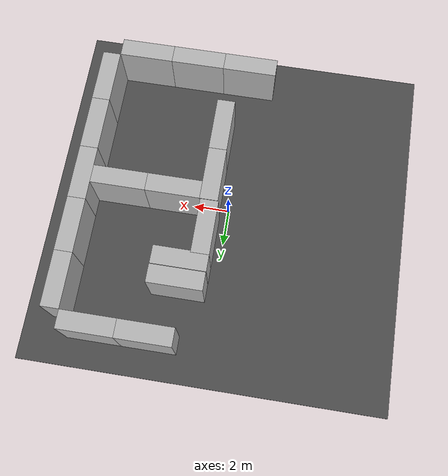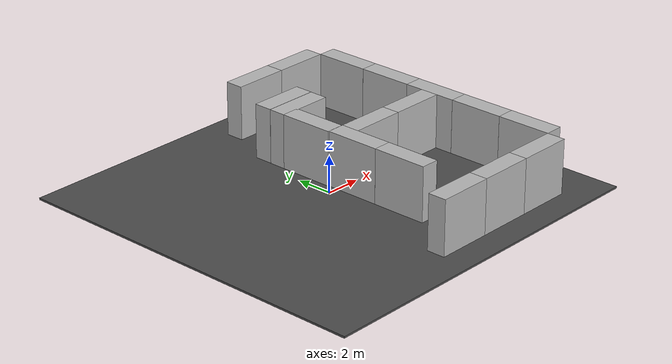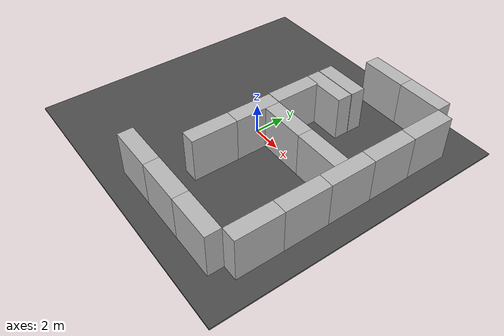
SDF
<sdf version="1.7">
 <world name="default">
  <model name="asphalt_plane">
   <static>1</static>
   <link name="link">
    <collision name="collision"><geometry><box><size>20 20 0.1</size></box></geometry></collision>
    <visual name="visual">
     <cast_shadows>0</cast_shadows>
     <geometry><box><size>20 20 0.1</size></box></geometry>
     <material>
      <script>
       <uri>model://asphalt_plane/materials/scripts</uri>
       <uri>model://asphalt_plane/materials/textures</uri>
       <name>vrc/asphalt</name>
      </script>
     </material>
    </visual>
    <velocity_decay><linear>0</linear><angular>0</angular></velocity_decay>
   </link>
  </model>
  <model name="brick_box_3x1x3_0">
   <static>1</static>
   <link name="chassis">
    <pose>0 0 1.5 0 -0 0</pose>
    <collision name="collision"><geometry><box><size>3 1 3</size></box></geometry></collision>
    <visual name="visual">
     <geometry><mesh><uri>model://brick_box_3x1x3/meshes/simple_box.dae</uri><scale>3 1 3</scale></mesh></geometry>
     <material>
      <script>
       <uri>model://brick_box_3x1x3/materials/scripts</uri>
       <uri>model://brick_box_3x1x3/materials/textures</uri>
       <name>BrickBox/Diffuse</name>
      </script>
     </material>
    </visual>
    <velocity_decay><linear>0</linear><angular>0</angular></velocity_decay>
   </link>
   <pose>3 8 0 0 -0 0</pose>
  </model>
  <model name="brick_box_3x1x3_1">
   <static>1</static>
   <link name="chassis">
    <pose>0 0 1.5 0 -0 0</pose>
    <collision name="collision"><geometry><box><size>3 1 3</size></box></geometry></collision>
    <visual name="visual">
     <geometry><mesh><uri>model://brick_box_3x1x3/meshes/simple_box.dae</uri><scale>3 1 3</scale></mesh></geometry>
     <material>
      <script>
       <uri>model://brick_box_3x1x3/materials/scripts</uri>
       <uri>model://brick_box_3x1x3/materials/textures</uri>
       <name>BrickBox/Diffuse</name>
      </script>
     </material>
    </visual>
    <velocity_decay><linear>0</linear><angular>0</angular></velocity_decay>
   </link>
   <pose>6 8 0 0 -0 0</pose>
  </model>
  <model name="brick_box_3x1x3_4">
   <static>1</static>
   <link name="chassis">
    <pose>0 0 1.5 0 -0 0</pose>
    <collision name="collision"><geometry><box><size>3 1 3</size></box></geometry></collision>
    <visual name="visual">
     <geometry><mesh><uri>model://brick_box_3x1x3/meshes/simple_box.dae</uri><scale>3 1 3</scale></mesh></geometry>
     <material>
      <script>
       <uri>model://brick_box_3x1x3/materials/scripts</uri>
       <uri>model://brick_box_3x1x3/materials/textures</uri>
       <name>BrickBox/Diffuse</name>
      </script>
     </material>
    </visual>
    <velocity_decay><linear>0</linear><angular>0</angular></velocity_decay>
   </link>
   <pose>6 -8 0 0 -0 0</pose>
  </model>
  <model name="brick_box_3x1x3_5">
   <static>1</static>
   <link name="chassis">
    <pose>0 0 1.5 0 -0 0</pose>
    <collision name="collision"><geometry><box><size>3 1 3</size></box></geometry></collision>
    <visual name="visual">
     <geometry><mesh><uri>model://brick_box_3x1x3/meshes/simple_box.dae</uri><scale>3 1 3</scale></mesh></geometry>
     <material>
      <script>
       <uri>model://brick_box_3x1x3/materials/scripts</uri>
       <uri>model://brick_box_3x1x3/materials/textures</uri>
       <name>BrickBox/Diffuse</name>
      </script>
     </material>
    </visual>
    <velocity_decay><linear>0</linear><angular>0</angular></velocity_decay>
   </link>
   <pose>3 -8 0 0 -0 0</pose>
  </model>
  <model name="brick_box_3x1x3_6">
   <static>1</static>
   <link name="chassis">
    <pose>0 0 1.5 0 -0 0</pose>
    <collision name="collision"><geometry><box><size>3 1 3</size></box></geometry></collision>
    <visual name="visual">
     <geometry><mesh><uri>model://brick_box_3x1x3/meshes/simple_box.dae</uri><scale>3 1 3</scale></mesh></geometry>
     <material>
      <script>
       <uri>model://brick_box_3x1x3/materials/scripts</uri>
       <uri>model://brick_box_3x1x3/materials/textures</uri>
       <name>BrickBox/Diffuse</name>
      </script>
     </material>
    </visual>
    <velocity_decay><linear>0</linear><angular>0</angular></velocity_decay>
   </link>
   <pose>0 -8 0 0 -0 0</pose>
  </model>
  <model name="brick_box_3x1x3_14">
   <static>1</static>
   <link name="chassis">
    <pose>0 0 1.5 0 -0 0</pose>
    <collision name="collision"><geometry><box><size>3 1 3</size></box></geometry></collision>
    <visual name="visual">
     <geometry><mesh><uri>model://brick_box_3x1x3/meshes/simple_box.dae</uri><scale>3 1 3</scale></mesh></geometry>
     <material>
      <script>
       <uri>model://brick_box_3x1x3/materials/scripts</uri>
       <uri>model://brick_box_3x1x3/materials/textures</uri>
       <name>BrickBox/Diffuse</name>
      </script>
     </material>
    </visual>
    <velocity_decay><linear>0</linear><angular>0</angular></velocity_decay>
   </link>
   <pose>8 6 0 0 -0 1.57</pose>
  </model>
  <model name="brick_box_3x1x3_15">
   <static>1</static>
   <link name="chassis">
    <pose>0 0 1.5 0 -0 0</pose>
    <collision name="collision"><geometry><box><size>3 1 3</size></box></geometry></collision>
    <visual name="visual">
     <geometry><mesh><uri>model://brick_box_3x1x3/meshes/simple_box.dae</uri><scale>3 1 3</scale></mesh></geometry>
     <material>
      <script>
       <uri>model://brick_box_3x1x3/materials/scripts</uri>
       <uri>model://brick_box_3x1x3/materials/textures</uri>
       <name>BrickBox/Diffuse</name>
      </script>
     </material>
    </visual>
    <velocity_decay><linear>0</linear><angular>0</angular></velocity_decay>
   </link>
   <pose>8 3 0 0 -0 1.57</pose>
  </model>
  <model name="brick_box_3x1x3_16">
   <static>1</static>
   <link name="chassis">
    <pose>0 0 1.5 0 -0 0</pose>
    <collision name="collision"><geometry><box><size>3 1 3</size></box></geometry></collision>
    <visual name="visual">
     <geometry><mesh><uri>model://brick_box_3x1x3/meshes/simple_box.dae</uri><scale>3 1 3</scale></mesh></geometry>
     <material>
      <script>
       <uri>model://brick_box_3x1x3/materials/scripts</uri>
       <uri>model://brick_box_3x1x3/materials/textures</uri>
       <name>BrickBox/Diffuse</name>
      </script>
     </material>
    </visual>
    <velocity_decay><linear>0</linear><angular>0</angular></velocity_decay>
   </link>
   <pose>8 0 0 0 -0 1.57</pose>
  </model>
  <model name="brick_box_3x1x3_17">
   <static>1</static>
   <link name="chassis">
    <pose>0 0 1.5 0 -0 0</pose>
    <collision name="collision"><geometry><box><size>3 1 3</size></box></geometry></collision>
    <visual name="visual">
     <geometry><mesh><uri>model://brick_box_3x1x3/meshes/simple_box.dae</uri><scale>3 1 3</scale></mesh></geometry>
     <material>
      <script>
       <uri>model://brick_box_3x1x3/materials/scripts</uri>
       <uri>model://brick_box_3x1x3/materials/textures</uri>
       <name>BrickBox/Diffuse</name>
      </script>
     </material>
    </visual>
    <velocity_decay><linear>0</linear><angular>0</angular></velocity_decay>
   </link>
   <pose>8 -3 0 0 -0 1.57</pose>
  </model>
  <model name="brick_box_3x1x3_18">
   <static>1</static>
   <link name="chassis">
    <pose>0 0 1.5 0 -0 0</pose>
    <collision name="collision"><geometry><box><size>3 1 3</size></box></geometry></collision>
    <visual name="visual">
     <geometry><mesh><uri>model://brick_box_3x1x3/meshes/simple_box.dae</uri><scale>3 1 3</scale></mesh></geometry>
     <material>
      <script>
       <uri>model://brick_box_3x1x3/materials/scripts</uri>
       <uri>model://brick_box_3x1x3/materials/textures</uri>
       <name>BrickBox/Diffuse</name>
      </script>
     </material>
    </visual>
    <velocity_decay><linear>0</linear><angular>0</angular></velocity_decay>
   </link>
   <pose>8 -6 0 0 -0 1.57</pose>
  </model>
  <model name="brick_box_3x1x3_19">
   <static>1</static>
   <link name="chassis">
    <pose>0 0 1.5 0 -0 0</pose>
    <collision name="collision"><geometry><box><size>3 1 3</size></box></geometry></collision>
    <visual name="visual">
     <geometry><mesh><uri>model://brick_box_3x1x3/meshes/simple_box.dae</uri><scale>3 1 3</scale></mesh></geometry>
     <material>
      <script>
       <uri>model://brick_box_3x1x3/materials/scripts</uri>
       <uri>model://brick_box_3x1x3/materials/textures</uri>
       <name>BrickBox/Diffuse</name>
      </script>
     </material>
    </visual>
    <velocity_decay><linear>0</linear><angular>0</angular></velocity_decay>
   </link>
   <pose>6 0 0 0 -0 0</pose>
  </model>
  <model name="brick_box_3x1x3_20">
   <static>1</static>
   <link name="chassis">
    <pose>0 0 1.5 0 -0 0</pose>
    <collision name="collision"><geometry><box><size>3 1 3</size></box></geometry></collision>
    <visual name="visual">
     <geometry><mesh><uri>model://brick_box_3x1x3/meshes/simple_box.dae</uri><scale>3 1 3</scale></mesh></geometry>
     <material>
      <script>
       <uri>model://brick_box_3x1x3/materials/scripts</uri>
       <uri>model://brick_box_3x1x3/materials/textures</uri>
       <name>BrickBox/Diffuse</name>
      </script>
     </material>
    </visual>
    <velocity_decay><linear>0</linear><angular>0</angular></velocity_decay>
   </link>
   <pose>3 0 0 0 -0 0</pose>
  </model>
  <model name="brick_box_3x1x3_21">
   <static>1</static>
   <link name="chassis">
    <pose>0 0 1.5 0 -0 0</pose>
    <collision name="collision"><geometry><box><size>3 1 3</size></box></geometry></collision>
    <visual name="visual">
     <geometry><mesh><uri>model://brick_box_3x1x3/meshes/simple_box.dae</uri><scale>3 1 3</scale></mesh></geometry>
     <material>
      <script>
       <uri>model://brick_box_3x1x3/materials/scripts</uri>
       <uri>model://brick_box_3x1x3/materials/textures</uri>
       <name>BrickBox/Diffuse</name>
      </script>
     </material>
    </visual>
    <velocity_decay><linear>0</linear><angular>0</angular></velocity_decay>
   </link>
   <pose>1 -1 0 0 -0 1.57</pose>
  </model>
  <model name="brick_box_3x1x3_22">
   <static>1</static>
   <link name="chassis">
    <pose>0 0 1.5 0 -0 0</pose>
    <collision name="collision"><geometry><box><size>3 1 3</size></box></geometry></collision>
    <visual name="visual">
     <geometry><mesh><uri>model://brick_box_3x1x3/meshes/simple_box.dae</uri><scale>3 1 3</scale></mesh></geometry>
     <material>
      <script>
       <uri>model://brick_box_3x1x3/materials/scripts</uri>
       <uri>model://brick_box_3x1x3/materials/textures</uri>
       <name>BrickBox/Diffuse</name>
      </script>
     </material>
    </visual>
    <velocity_decay><linear>0</linear><angular>0</angular></velocity_decay>
   </link>
   <pose>1 -4 0 0 -0 1.57</pose>
  </model>
  <model name="brick_box_3x1x3_22_clone">
   <static>1</static>
   <link name="chassis">
    <pose>0 0 1.5 0 -0 0</pose>
    <collision name="collision"><geometry><box><size>3 1 3</size></box></geometry></collision>
    <visual name="visual">
     <geometry><mesh><uri>model://brick_box_3x1x3/meshes/simple_box.dae</uri><scale>3 1 3</scale></mesh></geometry>
     <material>
      <script>
       <uri>model://brick_box_3x1x3/materials/scripts</uri>
       <uri>model://brick_box_3x1x3/materials/textures</uri>
       <name>BrickBox/Diffuse</name>
      </script>
     </material>
    </visual>
    <velocity_decay><linear>0</linear><angular>0</angular></velocity_decay>
   </link>
   <pose>0.952901 2.01337 0 0 -0 1.57</pose>
  </model>
  <model name="brick_box_3x1x3_20_clone_0_clone">
   <static>1</static>
   <link name="chassis">
    <pose>0 0 1.5 0 -0 0</pose>
    <collision name="collision"><geometry><box><size>3 1 3</size></box></geometry></collision>
    <visual name="visual">
     <geometry><mesh><uri>model://brick_box_3x1x3/meshes/simple_box.dae</uri><scale>3 1 3</scale></mesh></geometry>
     <material>
      <script>
       <uri>model://brick_box_3x1x3/materials/scripts</uri>
       <uri>model://brick_box_3x1x3/materials/textures</uri>
       <name>BrickBox/Diffuse</name>
      </script>
     </material>
    </visual>
    <velocity_decay><linear>0</linear><angular>0</angular></velocity_decay>
   </link>
   <pose>1.95725 3.92328 0 0 -0 0</pose>
  </model>
  <model name="brick_box_3x1x3_20_clone_0_clone_clone">
   <static>1</static>
   <link name="chassis">
    <pose>0 0 1.5 0 -0 0</pose>
    <collision name="collision"><geometry><box><size>3 1 3</size></box></geometry></collision>
    <visual name="visual">
     <geometry><mesh><uri>model://brick_box_3x1x3/meshes/simple_box.dae</uri><scale>3 1 3</scale></mesh></geometry>
     <material>
      <script>
       <uri>model://brick_box_3x1x3/materials/scripts</uri>
       <uri>model://brick_box_3x1x3/materials/textures</uri>
       <name>BrickBox/Diffuse</name>
      </script>
     </material>
    </visual>
    <velocity_decay><linear>0</linear><angular>0</angular></velocity_decay>
   </link>
   <pose>1.96976 4.94573 0 0 -0 0</pose>
  </model>
 </world>
</sdf>
